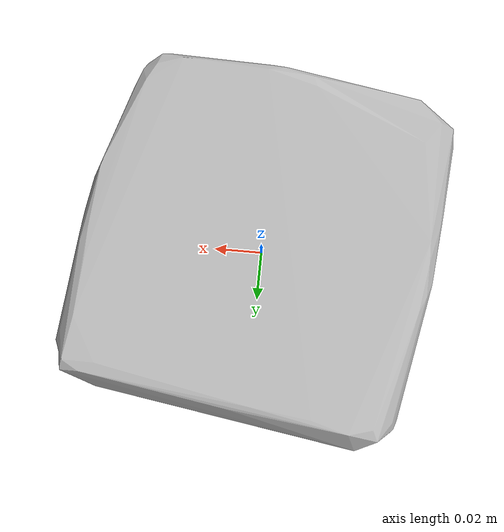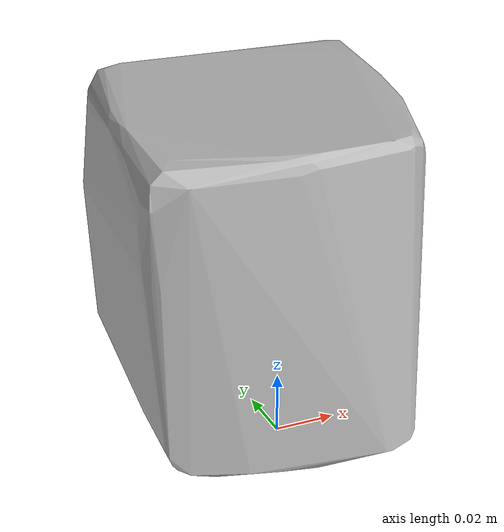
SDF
<?xml version='1.0'?>
<sdf version="1.4">
  <model name="cup_noodles_shrimp_picante">
    <static>false</static>
    <link name="link">
      <inertial>
        <pose>-0.0015255065745367283 0.014824257409885484 0.058821366589364404 3.125588196058364 0.00391198328729422 2.9907750626805987</pose>
        <mass>0.0874628077856238</mass>
        <inertia>
          <ixx>0.000143876253874537</ixx>
          <ixy>1.3172482177872741e-21</ixy>
          <ixz>-1.2689140461277715e-22</ixz>
          <iyy>0.00013275138816560542</iyy>
          <iyz>-1.5684143775965147e-21</iyz>
          <izz>0.00012090542939190648</izz>
        </inertia>
      </inertial>
      <collision name="collision">
        <geometry>
          <mesh>
            <!-- Use a downsampled mesh for collisions -->
            <uri>model:///cup_noodles_shrimp_picante/cup_noodles_shrimp_picante_250_collision.obj</uri>
	        </mesh>
        </geometry>
        <surface>
      </surface>
      </collision>
      <visual name="visual">
        <geometry>
          <mesh>
            <uri>model:///cup_noodles_shrimp_picante/optimized_tsdf_texture_mapped_mesh.obj</uri>
	        </mesh>
        </geometry>
        <material>
          <script>
            <uri>model:///cup_noodles_shrimp_picante/cup_noodles_shrimp_picante.material</uri>
            <name>cup_noodles_shrimp_picante</name>
          </script>
        </material>
      </visual>
    </link>
  </model>
</sdf>
